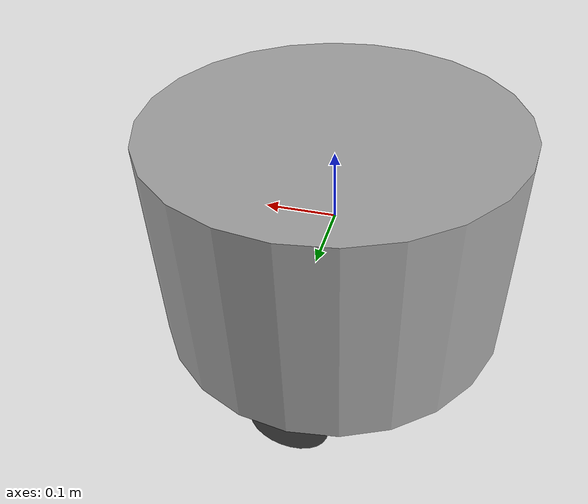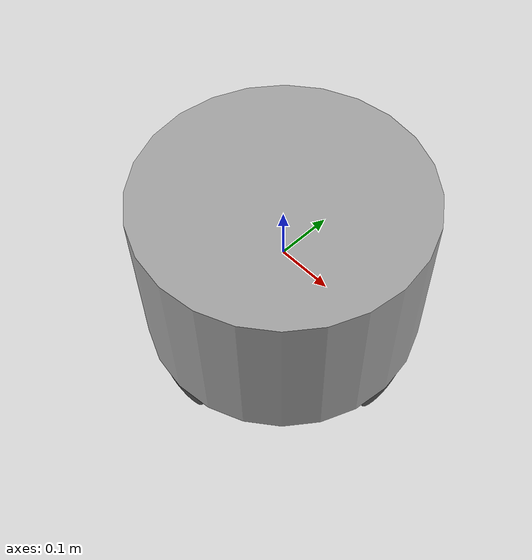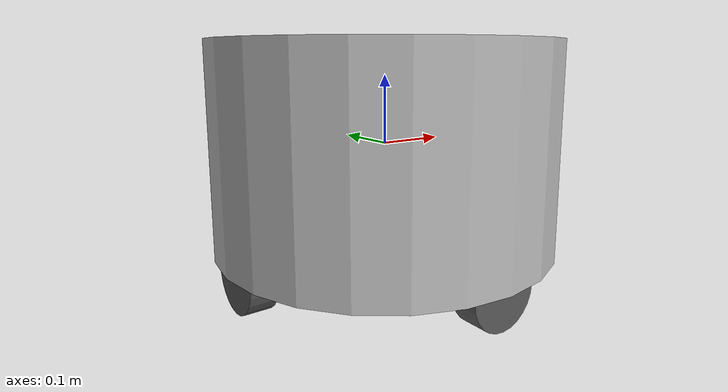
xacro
<?xml version="1.0"?>
<robot name="omni" xmlns:xacro="http://ros.org/wiki/xacro">

  <material name="grey">
    <color rgba="0.65 0.65 0.65 1"/>
  </material>

  <material name="black">
    <color rgba="0.3 0.3 0.3 1"/>
  </material>

  <xacro:macro name="default_inertial" params="mass">
    <inertial>
      <mass value="${mass}"/>
      <inertia ixx="1.0" ixy="0.0" ixz="0.0" iyy="1.0" iyz="0.0" izz="1.0"/>
    </inertial>
  </xacro:macro>

<link name="dummy"></link>

  <link name="base_link">
    <visual>
      <geometry>
        <cylinder length="0.3" radius="0.25"/>
      </geometry>
      <material name="grey"/>
    </visual>
    <collision>
      <geometry>
        <cylinder length="0.3" radius="0.25"/>
      </geometry>
    </collision>
    <xacro:default_inertial mass="10"/>
  </link>
  <joint name="dummy_joint" type="fixed">
    <parent link="dummy"/>
    <child link="base_link"/>
  </joint>

  <xacro:macro name="wheel_link" params="name linkrpy axisxyz originxyz">
    <link name="${name}_wheel">
      <visual>
        <geometry>
          <cylinder length="0.038" radius="0.05"/>
        </geometry>
        <origin rpy="${linkrpy}"/>
        <material name="black"/>
      </visual>
      <collision>
        <geometry>
          <cylinder length="0.038" radius="0.05"/>
        </geometry>
        <origin rpy="${linkrpy}"/>
      </collision>
      <xacro:default_inertial mass="1"/>
    </link>

    <joint name="${name}_wheel_joint" type="continuous">
      <axis rpy="0 0 0" xyz="${axisxyz}"/>
      <parent link="base_link"/>
      <child link="${name}_wheel"/>
      <origin xyz="${originxyz}"/>
    </joint>
  </xacro:macro>

  <xacro:wheel_link name="left" linkrpy="0 1.5708 0" axisxyz="1 0 0" originxyz="0.22 0 -0.15"/>
  <xacro:wheel_link name="right" linkrpy="0 1.5708 0" axisxyz="1 0 0" originxyz="-0.22 0 -0.15"/>
  <xacro:wheel_link name="front" linkrpy="0 1.5708 1.5708" axisxyz="0 1 0" originxyz="0 0.22 -0.15"/>
  <xacro:wheel_link name="back" linkrpy="0 1.5708 1.5708" axisxyz="0 1 0" originxyz="0 -0.22 -0.15"/>

  <!-- Gazebo plugin for Ros Control-->
  <gazebo>
    <plugin name="gazebo_ros_control" filename="libgazebo_ros_control.so">
      <robotNamespace>/</robotNamespace>
    </plugin>
  </gazebo>

</robot>
